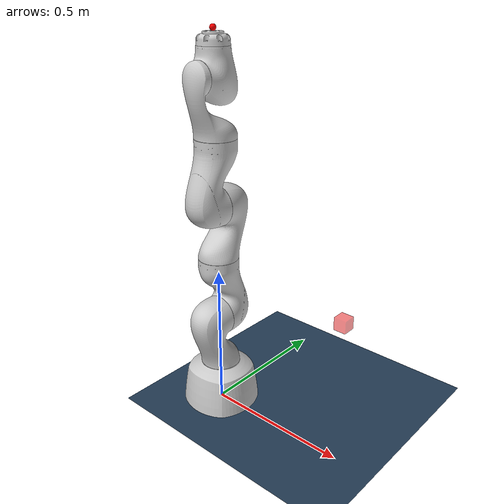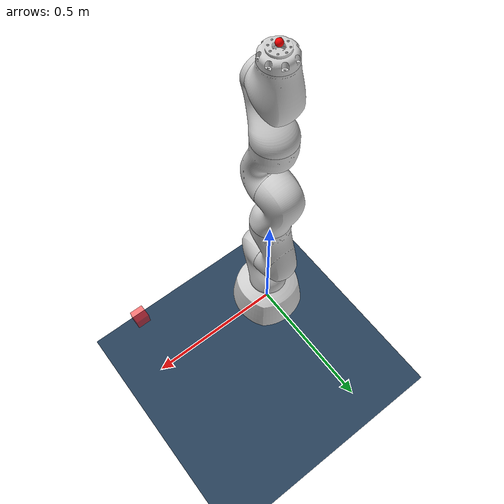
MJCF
<!-- 机械臂 + 灯光 + 地板-->

<mujoco model="med7_test_scene">
  <statistic center="0.3 0 0.4" extent="0.8"/>

  <compiler angle="radian" meshdir="assets" autolimits="true" balanceinertia="true"/>

  <visual>
    <headlight diffuse="0.6 0.6 0.6" ambient="0.1 0.1 0.1" specular="0 0 0"/>
    <rgba haze="0.15 0.25 0.35 1"/>
    <global azimuth="120" elevation="-20"/>
  </visual>

  <asset>
    <texture type="skybox" builtin="gradient" rgb1="0.3 0.5 0.7" rgb2="0 0 0" width="512" height="3072"/>
    <texture type="2d" name="groundplane" builtin="checker" rgb1="0.2 0.3 0.4" rgb2="0.1 0.2 0.3" width="100" height="100"/>
    <material name="groundplane" texture="groundplane" texrepeat="10 10"/>
  </asset>

  <include file="med7_OSC.xml"/>

  <worldbody>
    <light pos="0 0 1.5" dir="0 0 -1" directional="true"/>
    <geom name="floor" size="0 0 0.05" type="plane" material="groundplane"/>

    <body name="target" mocap="true" pos="0.5 0 0.5">
      <geom type="box" size="0.02 0.02 0.02" rgba="1 0 0 0.5" contype="0" conaffinity="0"/>
    </body>
  </worldbody>

</mujoco>

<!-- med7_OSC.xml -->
<mujoco model="kuka_med7_osc_core">
  <default>
    <default class="med7">
      <material specular="0.5" shininess="0.25"/>
      <joint damping="5.0" frictionloss="0.5" armature="1.0"/>
      <general biastype="affine"/>

      <default class="visual">
        <geom type="mesh" contype="0" conaffinity="0" group="2" material="light_grey"/>
      </default>

      <default class="collision">
        <geom type="mesh" group="3" rgba="0.5 0.5 0.5 1"/>
      </default>
    </default>
  </default>

  <asset>
    <material name="light_grey" rgba="0.8 0.8 0.8 1"/>
    <material name="dark_grey" rgba="0.3 0.3 0.3 1"/>

    <mesh name="link_0_vis" file="visual/link_0.obj"/>
    <mesh name="link_1_vis" file="visual/link_1.obj"/>
    <mesh name="link_2_vis" file="visual/link_2.obj"/>
    <mesh name="link_3_vis" file="visual/link_3.obj"/>
    <mesh name="link_4_vis" file="visual/link_4.obj"/>
    <mesh name="link_5_vis" file="visual/link_5.obj"/>
    <mesh name="link_6_vis" file="visual/link_6.obj"/>
    <mesh name="link_7_vis" file="visual/link_7.obj"/>

    <mesh name="link_0_col" file="collision/link_0.stl"/>
    <mesh name="link_1_col" file="collision/link_1.stl"/>
    <mesh name="link_2_col" file="collision/link_2.stl"/>
    <mesh name="link_3_col" file="collision/link_3.stl"/>
    <mesh name="link_4_col" file="collision/link_4.stl"/>
    <mesh name="link_5_col" file="collision/link_5.stl"/>
    <mesh name="link_6_col" file="collision/link_6.stl"/>
    <mesh name="link_7_col" file="collision/link_7.stl"/>
  </asset>

  <worldbody>
    <body name="link_0" pos="0 0 0">
      <inertial pos="-0.001896 0.0 0.076263" mass="7.143112" diaginertia="0.038694 0.039461 0.054387"/>
      <geom mesh="link_0_vis" class="visual"/>
      <geom mesh="link_0_col" class="collision"/>

      <body name="link_1" pos="0 0 0.1475">
        <inertial pos="0.0 -0.034819 0.123299" mass="3.271499" fullinertia="0.020611 0.019667 0.00729 0 0 0.00366"/>
        <joint name="A1" axis="0 0 1" range="-2.9496 2.9496" class="med7"/>
        <geom mesh="link_1_vis" class="visual" pos="0 0 -0.1475"/>
        <geom mesh="link_1_col" class="collision" pos="0 0 -0.1475"/>

        <body name="link_2" pos="0 -0.0105 0.1925">
          <inertial pos="0.0 0.039793 0.086944" mass="3.886413" fullinertia="0.030552 0.028995 0.009317 0 0 0.005676"/>
          <joint name="A2" axis="0 1 0" range="-2.0769 2.0769" class="med7"/>
          <geom mesh="link_2_vis" class="visual" pos="0 0.0105 -0.34"/>
          <geom mesh="link_2_col" class="collision" pos="0 0.0105 -0.34"/>

          <body name="link_3" pos="0 0.0105 0.2075">
            <inertial pos="0.0 0.034819 0.123299" mass="3.271499" fullinertia="0.020611 0.019667 0.00729 0 0 -0.00366"/>
            <joint name="A3" axis="0 0 1" range="-2.9496 2.9496" class="med7"/>
            <geom mesh="link_3_vis" class="visual" pos="0 0 -0.5475"/>
            <geom mesh="link_3_col" class="collision" pos="0 0 -0.5475"/>

            <body name="link_4" pos="0 0.0105 0.1925">
              <inertial pos="0.0 -0.039793 0.086944" mass="3.886411" fullinertia="0.030547 0.028993 0.009313 0 0 -0.005676"/>
              <joint name="A4" axis="0 -1 0" range="-2.0769 2.0769" class="med7"/>
              <geom mesh="link_4_vis" class="visual" pos="0 -0.0105 -0.74"/>
              <geom mesh="link_4_col" class="collision" pos="0 -0.0105 -0.74"/>

              <body name="link_5" pos="0 -0.0105 0.2075">
                <inertial pos="0.0 -0.029824 0.076267" mass="1.474048" fullinertia="0.008179 0.006879 0.003709 0 0 0.002704"/>
                <joint name="A5" axis="0 0 1" range="-2.9496 2.9496" class="med7"/>
                <geom mesh="link_5_vis" class="visual" pos="0 0 -0.9475"/>
                <geom mesh="link_5_col" class="collision" pos="0 0 -0.9475"/>

                <body name="link_6" pos="0 -0.0707 0.1925">
                  <inertial pos="-0.000001 0.07102 0.004953" mass="2.316911" fullinertia="0.006813 0.006559 0.004462 0 0 0.0003"/>
                  <joint name="A6" axis="0 1 0" range="-2.0769 2.0769" class="med7"/>
                  <geom mesh="link_6_vis" class="visual" pos="0 0.0707 -1.14"/>
                  <geom mesh="link_6_col" class="collision" pos="0 0.0707 -1.14"/>

                  <body name="link_7" pos="0 0.0707 0.091">
                    <inertial pos="0.000003 -0.000002 0.013782" mass="0.250108" fullinertia="0.000165 0.000165 0.000288 0 0 0"/>
                    <joint name="A7" axis="0 0 1" range="-3.0368 3.0368" class="med7"/>
                    <geom mesh="link_7_vis" class="visual" pos="0 0 -1.231"/>
                    <geom mesh="link_7_col" class="collision" pos="0 0 -1.231"/>

                    <body name="attachment" pos="0 0 0.045" quat="0 0 0 1">
                      <site name="attachment_site" rgba="1 0 0 1" size="0.01" group="1"/>
                    </body>
                  </body>
                </body>
              </body>
            </body>
          </body>
        </body>
      </body>
    </body>
  </worldbody>

  <contact>
    <exclude body1="link_0" body2="link_1"/>
    <exclude body1="link_1" body2="link_2"/>
    <exclude body1="link_2" body2="link_3"/>
    <exclude body1="link_3" body2="link_4"/>
    <exclude body1="link_4" body2="link_5"/>
    <exclude body1="link_5" body2="link_6"/>
    <exclude body1="link_6" body2="link_7"/>
  </contact>

  <actuator>
    <motor name="A1" joint="A1" ctrlrange="-200 200"/>
    <motor name="A2" joint="A2" ctrlrange="-200 200"/>
    <motor name="A3" joint="A3" ctrlrange="-200 200"/>
    <motor name="A4" joint="A4" ctrlrange="-200 200"/>
    <motor name="A5" joint="A5" ctrlrange="-200 200"/>
    <motor name="A6" joint="A6" ctrlrange="-200 200"/>
    <motor name="A7" joint="A7" ctrlrange="-200 200"/>
  </actuator>

  <sensor>
    <force name="ee_force" site="attachment_site"/>
    <torque name="ee_torque" site="attachment_site"/>
  </sensor>
</mujoco>
